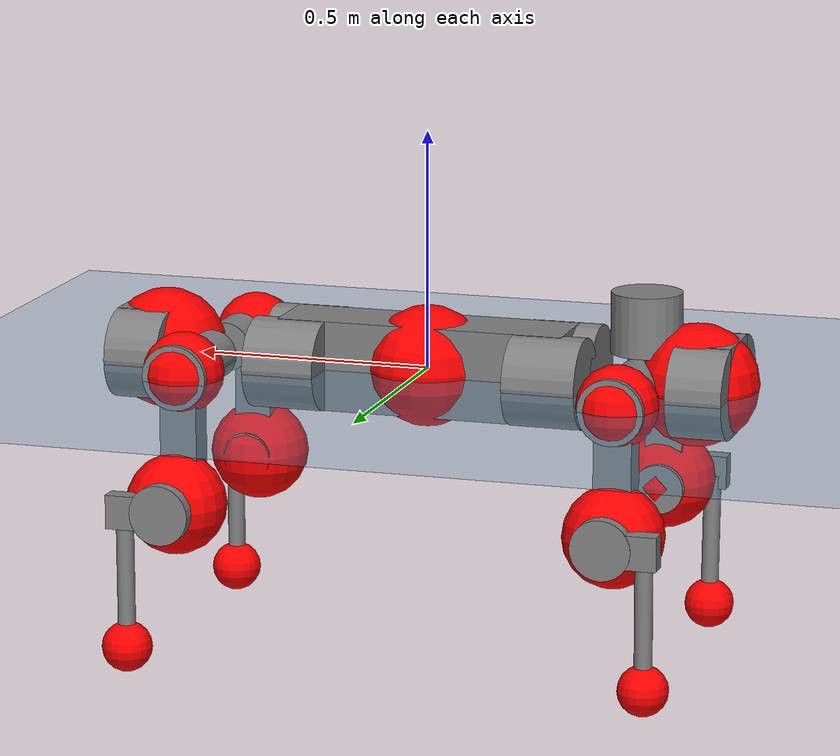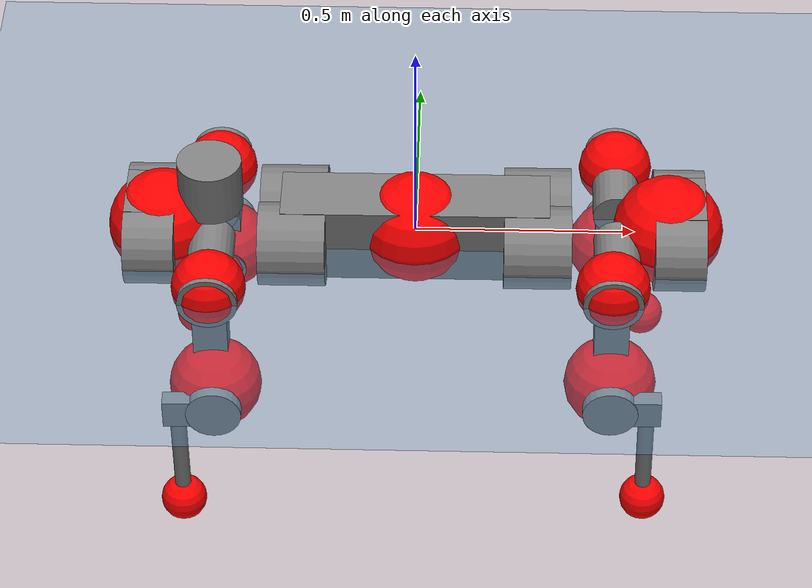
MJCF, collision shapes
<mujoco model="anymal_c">
  <compiler angle="radian" assetdir="assets" balanceinertia="true" inertiafromgeom="false"/>

  <option timestep="0.005" density="1.2" viscosity="2e-05"/>

  <size nkey="1"/>

  <visual>
    <quality shadowsize="8192"/>
    <map shadowclip="0.5"/>
  </visual>

  <default>
    <default class="/">
      <material specular="0" shininess="0.25"/>
      <geom contype="0" conaffinity="0" group="1" solref="-1000 -80"/>
      <site size="0.01 0.005 0.005" group="5"/>
      <general forcelimited="true" forcerange="-80 80" biastype="affine" gainprm="80" biasprm="0 -80 -2"/>
      <default class="anymal_c">
        <joint armature="0.01" damping="0.01" frictionloss="0.1"/>
        <default class="visual">
          <geom type="mesh" group="2"/>
          <default class="visual_zflip"/>
        </default>
        <default class="collision">
          <geom type="cylinder" group="3"/>
          <default class="foot">
            <geom size="0.03 0 0" type="sphere" condim="6" priority="1" friction="0.8 0.02 0.01" solimp="0.015 1 0.03"/>
          </default>
        </default>
      </default>
      <default class="reward_collision_sphere">
        <geom group="5" rgba="1 0 0 1"/>
      </default>
    </default>
  </default>

  <asset>
    <texture type="skybox" colorspace="auto" name="//unnamed_texture_0" builtin="gradient" rgb1="0.95 0.95 0.95" rgb2="0.95 0.95 0.95" width="100" height="600"/>
    <texture type="2d" colorspace="auto" name="texplane" builtin="checker" rgb1="0.345 0.575 0.748" rgb2="0.345 0.575 0.748" markrgb="1 1 1" width="512" height="512"/>
    <texture type="2d" colorspace="linear" name="base" file="base.png"/>
    <texture type="2d" colorspace="linear" name="top_shell" file="top_shell.png"/>
    <texture type="2d" colorspace="linear" name="bottom_shell" file="bottom_shell.png"/>
    <texture type="2d" colorspace="linear" name="remote" file="remote.png"/>
    <texture type="2d" colorspace="linear" name="hatch" file="hatch.png"/>
    <texture type="2d" colorspace="linear" name="handle" file="handle.png"/>
    <texture type="2d" colorspace="linear" name="face" file="face.png"/>
    <texture type="2d" colorspace="linear" name="battery" file="battery.png"/>
    <texture type="2d" colorspace="linear" name="lidar_cage" file="lidar_cage.png"/>
    <texture type="2d" colorspace="linear" name="depth_camera" file="depth_camera.png"/>
    <texture type="2d" colorspace="linear" name="wide_angle_camera" file="wide_angle_camera.png"/>
    <texture type="2d" colorspace="linear" name="lidar" file="lidar.png"/>
    <texture type="2d" colorspace="linear" name="drive" file="drive.png"/>
    <texture type="2d" colorspace="linear" name="hip_l" file="hip_l.png"/>
    <texture type="2d" colorspace="linear" name="shank_l" file="shank_l.png"/>
    <texture type="2d" colorspace="linear" name="foot" file="foot.png"/>
    <texture type="2d" colorspace="linear" name="thigh" file="thigh.png"/>
    <texture type="2d" colorspace="linear" name="shank_r" file="shank_r.png"/>
    <texture type="2d" colorspace="linear" name="hip_r" file="hip_r.png"/>
    <material name="MatPlane" class="/" texture="texplane" texuniform="true" texrepeat="2 2" specular="0.9" shininess="0.5"/>
    <material name="black_plastic" class="/" rgba="0.007 0.007 0.007 1"/>
    <material name="green" class="/" rgba="0.052 0.178 0.033 1"/>
    <material name="red" class="/" rgba="0.178 0.006 0.005 1"/>
    <material name="yellow" class="/" rgba="0.178 0.119 0.006 1"/>
    <material name="lwl" class="/" rgba="0.8 0.8 0.8 1"/>
    <material name="base" class="/" texture="base"/>
    <material name="top_shell" class="/" texture="top_shell"/>
    <material name="bottom_shell" class="/" texture="bottom_shell"/>
    <material name="hip_l" class="/" texture="hip_l"/>
    <material name="thigh" class="/" texture="thigh"/>
    <material name="shank_l" class="/" texture="shank_l"/>
    <material name="foot" class="/" texture="foot"/>
    <material name="hip_r" class="/" texture="hip_r"/>
    <material name="shank" class="/" texture="shank_r"/>
    <material name="hatch" class="/" texture="hatch"/>
    <material name="remote" class="/" texture="remote"/>
    <material name="handle" class="/" texture="handle"/>
    <material name="face" class="/" texture="face"/>
    <material name="depth_camera" class="/" texture="depth_camera"/>
    <material name="wide_angle_camera" class="/" texture="wide_angle_camera"/>
    <material name="battery" class="/" texture="battery"/>
    <material name="lidar_cage" class="/" texture="lidar_cage"/>
    <material name="lidar" class="/" texture="lidar"/>
    <material name="drive" class="/" texture="drive"/>
    <mesh name="base_0" class="/" file="base_0.obj"/>
    <mesh name="base_1" class="/" file="base_1.obj"/>
    <mesh name="base_2" class="/" file="base_2.obj"/>
    <mesh name="base_3" class="/" file="base_3.obj"/>
    <mesh name="base_4" class="/" file="base_4.obj"/>
    <mesh name="base_5" class="/" file="base_5.obj"/>
    <mesh name="top_shell" class="/" file="top_shell.obj"/>
    <mesh name="bottom_shell" class="/" file="bottom_shell.obj"/>
    <mesh name="remote" class="/" file="remote.obj"/>
    <mesh name="handle" class="/" file="handle.obj"/>
    <mesh name="face" class="/" file="face.obj"/>
    <mesh name="wide_angle_camera" class="/" file="wide_angle_camera.obj"/>
    <mesh name="depth_camera" class="/" file="depth_camera.obj"/>
    <mesh name="battery" class="/" file="battery.obj"/>
    <mesh name="lidar_cage" class="/" file="lidar_cage.obj"/>
    <mesh name="lidar" class="/" file="lidar.obj"/>
    <mesh name="drive" class="/" file="drive.obj"/>
    <mesh name="hip_l" class="/" file="hip_l.obj"/>
    <mesh name="thigh" class="/" file="thigh.obj"/>
    <mesh name="shank_l" class="/" file="shank_l.obj"/>
    <mesh name="foot" class="/" file="foot.obj"/>
    <mesh name="hip_r" class="/" file="hip_r.obj"/>
    <mesh name="hatch" class="/" file="hatch.obj"/>
    <mesh name="shank_r" class="/" file="shank_r.obj"/>
  </asset>

  <worldbody>
    <geom name="floor" class="/" size="100 100 0.125" type="plane" group="0" material="MatPlane"/>
    <light name="toplight_shadow" class="/" pos="0 0 5" dir="0.0990148 0.0990148 -0.990148" type="directional" ambient="0.04 0.04 0.04" diffuse="0.55 0.55 0.55" specular="0.12 0.12 0.12"/>
    <light name="toplight_fill" class="/" pos="0 0 5" dir="0.0990148 0.0990148 -0.990148" type="directional" castshadow="false" ambient="0.04 0.04 0.04" diffuse="0.3 0.3 0.3" specular="0.08 0.08 0.08"/>
    <body name="trunk" childclass="anymal_c" pos="-0.000362227 -8.23635e-05 0.00617239" quat="1 0.000479432 -0.000687168 0.000284418">
      <inertial pos="0.00468391 -0.00995128 0.0394553" quat="0.49806 0.50036 0.500925 0.50065" mass="23.5848" diaginertia="2.08377 0.528791 0.153261"/>
      <joint name="//unnamed_joint_0" type="free" armature="0" damping="0" frictionloss="0"/>
      <geom name="//unnamed_geom_1" class="visual" material="green" mesh="base_0"/>
      <geom name="//unnamed_geom_2" class="visual" material="yellow" mesh="base_1"/>
      <geom name="//unnamed_geom_3" class="visual" material="red" mesh="base_2"/>
      <geom name="//unnamed_geom_4" class="visual" material="black_plastic" mesh="base_3"/>
      <geom name="//unnamed_geom_5" class="visual" material="lwl" mesh="base_4"/>
      <geom name="//unnamed_geom_6" class="visual" material="base" mesh="base_5"/>
      <geom name="trunk_1" class="collision" size="0.306379 0.0739535 0.0950831" type="box"/>
      <geom name="trunk_2" class="collision" size="0.0950831 0.0765947" pos="0.279402 0.066913 0" quat="0.707107 0 0.707107 0"/>
      <geom name="trunk_3" class="collision" size="0.0950831 0.0765947" pos="-0.279402 0.066913 0" quat="0.707107 0 0.707107 0"/>
      <geom name="trunk_4" class="collision" size="0.0950831 0.0765947" pos="0.279402 -0.066913 0" quat="0.707107 0 0.707107 0"/>
      <geom name="trunk_5" class="collision" size="0.0950831 0.0765947" pos="-0.279402 -0.066913 0" quat="0.707107 0 0.707107 0"/>
      <geom name="//unnamed_geom_12" class="visual" material="top_shell" mesh="top_shell"/>
      <geom name="//unnamed_geom_13" class="visual" material="bottom_shell" mesh="bottom_shell"/>
      <geom name="//unnamed_geom_14" class="visual" material="remote" mesh="remote"/>
      <geom name="//unnamed_geom_15" class="visual" material="handle" mesh="handle"/>
      <geom name="//unnamed_geom_16" class="visual" pos="0.532469 0 0" quat="1 0 0 0" material="face" mesh="face"/>
      <geom name="trunk_6" class="collision" size="0.0581063 0.0739535 0.0950831" pos="0.603122 0 0" type="box"/>
      <geom name="//unnamed_geom_18" class="collision" size="0.0950831 0.0581063" pos="0.603122 0.066913 0" quat="0.707107 0 0.707107 0"/>
      <geom name="//unnamed_geom_19" class="collision" size="0.0950831 0.0581063" pos="0.603122 -0.066913 0" quat="0.707107 0 0.707107 0"/>
      <geom name="//unnamed_geom_20" class="visual" pos="0.593023 0 -0.0244217" quat="0.965926 0 0.258819 0" material="depth_camera" mesh="depth_camera"/>
      <geom name="//unnamed_geom_21" class="visual" pos="0.659003 0 0.0139061" material="wide_angle_camera" mesh="wide_angle_camera"/>
      <geom name="//unnamed_geom_22" class="visual_zflip" pos="-0.532469 0 0" quat="0 0 0 1" material="face" mesh="face"/>
      <geom name="trunk_7" class="collision" size="0.0581063 0.0739535 0.0950831" pos="-0.603122 0 0" quat="0 0 0 1" type="box"/>
      <geom name="//unnamed_geom_24" class="collision" size="0.0950831 0.0581063" pos="-0.603122 -0.066913 0" quat="0 -0.707107 0 0.707107"/>
      <geom name="//unnamed_geom_25" class="collision" size="0.0950831 0.0581063" pos="-0.603122 0.066913 0" quat="0 -0.707107 0 0.707107"/>
      <geom name="//unnamed_geom_26" class="visual" pos="-0.593023 0 -0.0244217" quat="0 -0.258819 0 0.965926" material="depth_camera" mesh="depth_camera"/>
      <geom name="//unnamed_geom_27" class="visual_zflip" pos="-0.659003 0 0.0139061" quat="0 0 0 1" material="wide_angle_camera" mesh="wide_angle_camera"/>
      <geom name="//unnamed_geom_28" class="visual" material="battery" mesh="battery"/>
      <geom name="//unnamed_geom_29" class="visual" pos="0 0.0687601 0.0296886" quat="0.683013 -0.183013 0.183013 0.683013" material="depth_camera" mesh="depth_camera"/>
      <geom name="//unnamed_geom_30" class="visual" pos="0 -0.0687601 0.0296886" quat="0.683013 0.183013 0.183013 -0.683013" material="depth_camera" mesh="depth_camera"/>
      <geom name="//unnamed_geom_31" class="visual" pos="-0.467596 0 0.0682765" quat="1 0 0 0" material="lidar_cage" mesh="lidar_cage"/>
      <geom name="trunk_8" class="collision" size="0.0739535 0.0633887" pos="-0.467596 0 0.124012"/>
      <geom name="//unnamed_geom_33" class="visual" pos="-0.467596 -0.00012914 0.132094" quat="0.707107 0 0 -0.707107" material="lidar" mesh="lidar"/>
      <geom name="//unnamed_geom_34" class="visual" pos="0.385253 0.099404 4.6521e-10" quat="0.258819 0.965926 0 0" material="drive" mesh="drive"/>
      <geom name="//unnamed_geom_35" class="visual" pos="0.385253 -0.099404 -4.6521e-10" quat="0.258819 -0.965926 0 0" material="drive" mesh="drive"/>
      <geom name="//unnamed_geom_36" class="visual" pos="-0.385253 0.099404 -4.6521e-10" quat="0 0 0.965926 -0.258819" material="drive" mesh="drive"/>
      <geom name="//unnamed_geom_37" class="visual" pos="-0.385253 -0.099404 4.6521e-10" quat="0 0 -0.965926 -0.258819" material="drive" mesh="drive"/>
      <geom name="//unnamed_geom_38" class="visual" pos="0.149014 0 0.067812" quat="1 0 0 0" material="hatch" mesh="hatch"/>
      <geom name="//unnamed_geom_39" class="reward_collision_sphere" size="0.126777"/>
      <geom name="//unnamed_geom_40" class="reward_collision_sphere" size="0.126777" pos="0.578073 0 0"/>
      <geom name="//unnamed_geom_41" class="reward_collision_sphere" size="0.126777" pos="-0.578073 0 0"/>
      <site name="imu" pos="0.31064 0.029001 0.0322798" size="0.0105648"/>
      <camera name="track" pos="0 -1.9118 0" quat="0.707107 0.707107 0 0" mode="trackcom"/>
      <camera name="ego_camera" pos="0.578073 0 -0.0371573" quat="-0.5 -0.5 0.5 0.5"/>
      <body name="LF_HIP" pos="0.384055 0.104485 0.000993753" quat="0.258772 0.965938 -0.000311024 0.000233776">
        <inertial pos="0.0811373 -0.0160535 -0.00378519" quat="-0.128722 0.712348 -0.135144 0.676555" mass="3.35549" diaginertia="0.0206591 0.00417892 0.00217944"/>
        <joint name="LF_HAA" pos="0 0 0" axis="0.999997 -0.00247133 0.000264052" range="-0.662816 0.492641" armature="0.00774836" damping="0" frictionloss="0.147168"/>
        <geom name="//unnamed_geom_42" class="visual" pos="0 2.73662e-05 -4.49487e-06" quat="0.258819 -0.965926 0 0" material="hip_l" mesh="hip_l"/>
        <geom name="//unnamed_geom_43" class="visual" pos="0.0769479 -0.0889012 -0.0511277" quat="0.183013 -0.683013 0.683013 0.183013" material="drive" mesh="drive"/>
        <geom name="//unnamed_geom_44" class="collision" size="0.052824 0.0739535" pos="0.0769479 -0.0114324 -0.00641427" quat="-0.353553 -0.612372 0.612372 -0.353553"/>
        <body name="LF_THIGH" pos="0.0775497 -0.0706005 -0.0417544" quat="0.183014 -0.683113 0.682923 0.182973">
          <inertial pos="0.0381411 -0.0010739 -0.224158" quat="0.99213 -0.00480465 -0.0879575 0.0889803" mass="3.98951" diaginertia="0.103253 0.0241174 0.00363962"/>
          <joint name="LF_HFE" pos="0 0 0" axis="0.999883 0.0138108 0.00659487" stiffness="0.00599056" range="-3.03173 3.0833" armature="0.00990488" damping="0.00816983" frictionloss="0.112694"/>
          <geom name="//unnamed_geom_45" class="visual" pos="0.00653995 1.03054e-05 0" quat="0.707107 0 0 -0.707107" material="thigh" mesh="thigh"/>
          <geom name="//unnamed_geom_46" class="collision" size="0.0686711 0.0422592" pos="0.0513842 0 0" quat="0.5 0.5 -0.5 -0.5"/>
          <geom name="//unnamed_geom_47" class="collision" size="0.039618 0.0316944 0.149295" pos="0.0385382 0 -0.131271" quat="0.707107 0 0 -0.707107" type="box"/>
          <geom name="//unnamed_geom_48" class="visual" pos="0.128846 0 -0.264745" quat="1 0 0 0" material="drive" mesh="drive"/>
          <geom name="//unnamed_geom_49" class="collision" size="0.052824 0.0739535" pos="0.0389235 0 -0.264745" quat="0.707107 0 0.707107 0"/>
          <geom name="//unnamed_geom_50" class="reward_collision_sphere" size="0.0845183" pos="0.0321151 0 0"/>
          <body name="LF_SHANK" pos="0.13169 -0.00600877 -0.27164" quat="0.999989 0.00321054 -0.0018499 -0.00290711">
            <inertial pos="0.00543504 -0.0588118 -0.0755702" quat="0.993071 -0.114965 -0.00196265 -0.0242831" mass="0.770173" diaginertia="0.0351833 0.007657 0.000854995"/>
            <joint name="LF_KFE" pos="0 0 0" axis="0.999996 -0.00282822 -0.000908343" stiffness="0.0044361" range="-3.11953 3.1327" armature="0.012296" damping="0" frictionloss="0.138408"/>
            <geom name="//unnamed_geom_51" class="visual" pos="0.00213253 0.0113708 0" quat="0.707107 0 0 -0.707107" material="shank_l" mesh="shank_l"/>
            <geom name="LF_kfe_act" class="collision" size="0.0633887 0.0211296" pos="0.0256921 0 0" quat="0.5 0.5 -0.5 -0.5"/>
            <geom name="//unnamed_geom_53" class="collision" size="0.0607465 0.0356562 0.0200731" pos="0.0256921 -0.0549633 0" quat="0.5 0.5 -0.5 -0.5" type="box"/>
            <geom name="//unnamed_geom_54" class="visual" pos="0.0167636 -0.0804071 -0.313951" quat="0.382683 0 0 -0.92388" material="foot" mesh="foot"/>
            <geom name="LF_calf" class="collision" size="0.0184884 0.14923" pos="0.0167641 -0.0840714 -0.156975" quat="0.707107 0 0 -0.707107"/>
            <geom name="LF_foot" class="foot" size="0.0228795" pos="0.0167641 -0.0840714 -0.29305" quat="0.707107 0 0 -0.707107"/>
            <geom name="//unnamed_geom_57" class="reward_collision_sphere" size="0.105648" pos="-0.0642303 0 0"/>
            <geom name="//unnamed_geom_58" class="reward_collision_sphere" size="0.052824" pos="0.0167641 -0.0840714 -0.29305"/>
            <site name="LF_foot" class="foot" pos="0.0167641 -0.0840714 -0.29305" quat="0.707107 0 0 -0.707107" size="0.0105648"/>
          </body>
        </body>
      </body>
      <body name="RF_HIP" pos="0.383646 -0.0947255 -0.000993271" quat="0.261826 -0.965113 0.000329994 -0.00216354">
        <inertial pos="0.0718234 0.0155446 -0.00825237" quat="0.139946 0.67747 0.124713 0.711263" mass="3.58593" diaginertia="0.0223207 0.00455859 0.00224415"/>
        <joint name="RF_HAA" pos="0 0 0" axis="0.99998 -0.00546383 -0.00311207" range="-0.631066 0.906468" armature="0.009644" damping="0.00453548" frictionloss="0.133448"/>
        <geom name="//unnamed_geom_59" class="visual" pos="0 -2.7366e-05 -4.49486e-06" quat="0.258819 0.965926 0 0" material="hip_r" mesh="hip_r"/>
        <geom name="//unnamed_geom_60" class="visual" pos="0.0769479 0.0889012 -0.0511277" quat="0.183013 0.683013 0.683013 -0.183013" material="drive" mesh="drive"/>
        <geom name="//unnamed_geom_61" class="collision" size="0.052824 0.0739535" pos="0.0769479 0.0114324 -0.00641427" quat="-0.353553 0.612372 0.612372 0.353553"/>
        <body name="RF_THIGH" pos="0.0662115 0.0649924 -0.0378669" quat="0.18331 0.682955 0.682888 -0.183395">
          <inertial pos="0.0415025 -0.000895055 -0.227944" quat="0.992891 -7.10506e-05 -0.0810241 0.0871944" mass="3.26053" diaginertia="0.101898 0.0212878 0.00249886"/>
          <joint name="RF_HFE" pos="0 0 0" axis="0.998829 -0.00602441 -0.0480033" stiffness="0.00500531" range="-3.36524 3.3273" armature="0.0114699" damping="0.041251" frictionloss="0.107378"/>
          <geom name="//unnamed_geom_62" class="visual" pos="0.00653995 1.03054e-05 0" quat="0.707107 0 0 -0.707107" material="thigh" mesh="thigh"/>
          <geom name="//unnamed_geom_63" class="collision" size="0.0686711 0.0422592" pos="0.0513842 0 0" quat="0.5 0.5 0.5 0.5"/>
          <geom name="//unnamed_geom_64" class="collision" size="0.039618 0.0316944 0.149295" pos="0.0385382 0 -0.131271" quat="0.707107 0 0 0.707107" type="box"/>
          <geom name="//unnamed_geom_65" class="visual" pos="0.128846 0 -0.264745" quat="1 0 0 0" material="drive" mesh="drive"/>
          <geom name="//unnamed_geom_66" class="collision" size="0.052824 0.0739535" pos="0.0389235 0 -0.264745" quat="0.707107 0 0.707107 0"/>
          <geom name="//unnamed_geom_67" class="reward_collision_sphere" size="0.0845183" pos="0.0321151 0 0"/>
          <body name="RF_SHANK" pos="0.11911 7.82788e-05 -0.268602" quat="1 2.60384e-05 -7.48727e-05 -7.42877e-05">
            <inertial pos="0.00933361 0.0588644 -0.0854844" quat="0.993072 0.115405 0.00308887 0.0219141" mass="0.804481" diaginertia="0.0338841 0.00729947 0.000766533"/>
            <joint name="RF_KFE" pos="0 0 0" axis="0.998375 -0.00603125 -0.0566671" stiffness="0.00900809" range="-3.15871 3.29648" armature="0.0109151" damping="0.0118977" frictionloss="0.165248"/>
            <geom name="//unnamed_geom_68" class="visual" pos="0.00213252 -0.0113708 0" quat="0.707107 0 0 0.707107" material="shank" mesh="shank_r"/>
            <geom name="RF_kfe_act" class="collision" size="0.0633887 0.0211296" pos="0.0256921 0 0" quat="0.5 0.5 0.5 0.5"/>
            <geom name="//unnamed_geom_70" class="collision" size="0.0607465 0.0356562 0.0200731" pos="0.0256921 0.0549633 0" quat="0.5 0.5 0.5 0.5" type="box"/>
            <geom name="//unnamed_geom_71" class="visual" pos="0.0167646 0.0804071 -0.313951" quat="0.382683 0 0 0.92388" material="foot" mesh="foot"/>
            <geom name="RF_calf" class="collision" size="0.0184884 0.14923" pos="0.0167641 0.0840714 -0.156975" quat="0.707107 0 0 0.707107"/>
            <geom name="RF_foot" class="foot" size="0.0309834" pos="0.0167641 0.0840714 -0.29305" quat="0.707107 0 0 0.707107"/>
            <geom name="//unnamed_geom_74" class="reward_collision_sphere" size="0.105648" pos="-0.0642303 0 0"/>
            <geom name="//unnamed_geom_75" class="reward_collision_sphere" size="0.052824" pos="0.0167641 0.0840714 -0.29305"/>
            <site name="RF_foot" class="foot" pos="0.0167641 0.0840714 -0.29305" quat="0.707107 0 0 0.707107" size="0.0105648"/>
          </body>
        </body>
      </body>
      <body name="LH_HIP" pos="-0.384932 0.0930377 0.0011862" quat="-0.000305284 -0.000302325 0.965868 -0.259034">
        <inertial pos="0.0765009 0.0226546 -0.00725433" quat="0.0866773 0.680203 0.0956898 0.721564" mass="3.75994" diaginertia="0.0200901 0.00366534 0.0023648"/>
        <joint name="LH_HAA" pos="0 0 0" axis="0.999509 0.0174862 -0.0260149" stiffness="0.0337881" range="-0.496871 0.791076" armature="0.0106783" damping="0.0341323" frictionloss="0.0854883"/>
        <geom name="//unnamed_geom_76" class="visual" pos="0 -2.7366e-05 -4.49486e-06" quat="-0.258819 -0.965926 0 0" material="hip_r" mesh="hip_r"/>
        <geom name="//unnamed_geom_77" class="visual" pos="0.0769479 0.0889012 -0.0511277" quat="0.183013 0.683013 0.683013 -0.183013" material="drive" mesh="drive"/>
        <geom name="//unnamed_geom_78" class="collision" size="0.052824 0.0739535" pos="0.0769479 0.0114324 -0.00641427" quat="-0.353553 0.612372 0.612372 0.353553"/>
        <body name="LH_THIGH" pos="0.0757358 0.0776381 -0.0372211" quat="0.181439 0.683806 0.682881 -0.182108">
          <inertial pos="0.0413224 0.00606281 -0.227628" quat="0.993151 -0.00294577 -0.0702689 0.0933025" mass="3.4881" diaginertia="0.0927795 0.0221349 0.00243715"/>
          <joint name="LH_HFE" pos="0 0 0" axis="0.999994 0.0028989 0.00192761" range="-3.13884 3.16" armature="0.0111205" damping="0.0128923" frictionloss="0.104432"/>
          <geom name="//unnamed_geom_79" class="visual" pos="0.00653995 1.03054e-05 0" quat="0.707107 0 0 -0.707107" material="thigh" mesh="thigh"/>
          <geom name="//unnamed_geom_80" class="collision" size="0.0686711 0.0422592" pos="0.0513842 0 0" quat="0.5 0.5 -0.5 -0.5"/>
          <geom name="//unnamed_geom_81" class="collision" size="0.039618 0.0316944 0.149295" pos="0.0385382 0 -0.131271" quat="0.707107 0 0 -0.707107" type="box"/>
          <geom name="//unnamed_geom_82" class="visual" pos="0.128846 0 -0.264745" quat="1 0 0 0" material="drive" mesh="drive"/>
          <geom name="//unnamed_geom_83" class="collision" size="0.052824 0.0739535" pos="0.0389235 0 -0.264745" quat="0.707107 0 0.707107 0"/>
          <geom name="//unnamed_geom_84" class="reward_collision_sphere" size="0.0845183" pos="0.0321151 0 0"/>
          <body name="LH_SHANK" pos="0.122109 0.00121949 -0.264278" quat="0.999993 0.000316338 0.00314105 -0.00221193">
            <inertial pos="-8.59627e-06 0.0602137 -0.0691604" quat="0.992783 0.117212 -0.00179379 0.0252841" mass="0.654691" diaginertia="0.0307859 0.00555695 0.000561563"/>
            <joint name="LH_KFE" pos="0 0 0" axis="0.999689 0.0101702 -0.0227712" range="-3.14796 3.37866" armature="0.0105652" damping="0" frictionloss="0.0873246"/>
            <geom name="//unnamed_geom_85" class="visual" pos="0.00213252 -0.0113708 0" quat="-0.707107 0 0 -0.707107" material="shank" mesh="shank_r"/>
            <geom name="LH_kfe_act" class="collision" size="0.0633887 0.0211296" pos="0.0256921 0 0" quat="0.5 0.5 -0.5 -0.5"/>
            <geom name="//unnamed_geom_87" class="collision" size="0.0607465 0.0356562 0.0200731" pos="0.0256921 0.0549633 0" quat="0.5 0.5 -0.5 -0.5" type="box"/>
            <geom name="//unnamed_geom_88" class="visual" pos="0.0167646 0.0804071 -0.313951" quat="-0.382683 0 0 -0.92388" material="foot" mesh="foot"/>
            <geom name="LH_calf" class="collision" size="0.0184884 0.14923" pos="0.0167641 0.0840714 -0.156975" quat="0.707107 0 0 -0.707107"/>
            <geom name="LH_foot" class="foot" size="0.0435018" pos="0.0167641 0.0840714 -0.29305" quat="0.707107 0 0 -0.707107"/>
            <geom name="//unnamed_geom_91" class="reward_collision_sphere" size="0.105648" pos="-0.0642303 0 0"/>
            <geom name="//unnamed_geom_92" class="reward_collision_sphere" size="0.052824" pos="0.0167641 0.0840714 -0.29305"/>
            <site name="LH_foot" class="foot" pos="0.0167641 0.0840714 -0.29305" quat="0.707107 0 0 -0.707107" size="0.0105648"/>
          </body>
        </body>
      </body>
      <body name="RH_HIP" pos="-0.386561 -0.106635 0.00412653" quat="-0.00177878 0.0036162 -0.966235 -0.25763">
        <inertial pos="0.0726314 -0.0181767 -0.00473279" quat="-0.134518 0.745514 -0.141848 0.637175" mass="3.53937" diaginertia="0.020502 0.00438066 0.0024365"/>
        <joint name="RH_HAA" pos="0 0 0" axis="0.999963 8.62071e-05 0.00860179" stiffness="0.00485564" range="-0.556766 0.481971" armature="0.0154822" damping="0.0237052" frictionloss="0.0787095"/>
        <geom name="//unnamed_geom_93" class="visual" pos="0 2.73662e-05 -4.49487e-06" quat="-0.258819 0.965926 0 0" material="hip_l" mesh="hip_l"/>
        <geom name="//unnamed_geom_94" class="visual" pos="0.0769479 -0.0889012 -0.0511277" quat="-0.183013 0.683013 -0.683013 -0.183013" material="drive" mesh="drive"/>
        <geom name="//unnamed_geom_95" class="collision" size="0.052824 0.0739535" pos="0.0769479 -0.0114324 -0.00641427" quat="0.353553 0.612372 -0.612372 0.353553"/>
        <body name="RH_THIGH" pos="0.0759874 -0.0671375 -0.0289595" quat="-0.183072 0.682974 -0.682952 -0.183326">
          <inertial pos="0.0395733 -0.0114842 -0.232662" quat="0.991195 -0.0029966 -0.113028 0.0689125" mass="4.10672" diaginertia="0.118456 0.0266878 0.00325284"/>
          <joint name="RH_HFE" pos="0 0 0" axis="0.999649 0.0178319 -0.0195721" range="-3.19348 3.33" armature="0.00404759" damping="0.00570931" frictionloss="0.0984176"/>
          <geom name="//unnamed_geom_96" class="visual" pos="0.00653995 1.03054e-05 0" quat="0.707107 0 0 -0.707107" material="thigh" mesh="thigh"/>
          <geom name="//unnamed_geom_97" class="collision" size="0.0686711 0.0422592" pos="0.0513842 0 0" quat="0.5 0.5 0.5 0.5"/>
          <geom name="//unnamed_geom_98" class="collision" size="0.039618 0.0316944 0.149295" pos="0.0385382 0 -0.131271" quat="0.707107 0 0 0.707107" type="box"/>
          <geom name="//unnamed_geom_99" class="visual" pos="0.128846 0 -0.264745" quat="1 0 0 0" material="drive" mesh="drive"/>
          <geom name="//unnamed_geom_100" class="collision" size="0.052824 0.0739535" pos="0.0389235 0 -0.264745" quat="0.707107 0 0.707107 0"/>
          <geom name="//unnamed_geom_101" class="reward_collision_sphere" size="0.0845183" pos="0.0321151 0 0"/>
          <body name="RH_SHANK" pos="0.130594 0.00714786 -0.263776" quat="0.999995 0.00261044 0.00126301 0.00144571">
            <inertial pos="0.00342235 -0.0598988 -0.0755852" quat="0.990704 -0.115154 0.0307025 -0.0655866" mass="0.808151" diaginertia="0.037291 0.0078352 0.000692933"/>
            <joint name="RH_KFE" pos="0 0 0" axis="0.998962 -0.0255374 -0.0377066" range="-3.28601 2.96452" armature="0.00973075" damping="0.00525132" frictionloss="0.109488"/>
            <geom name="//unnamed_geom_102" class="visual" pos="0.00213253 0.0113708 0" quat="0.707107 0 0 -0.707107" material="shank_l" mesh="shank_l"/>
            <geom name="RH_kfe_act" class="collision" size="0.0633887 0.0211296" pos="0.0256921 0 0" quat="0.5 0.5 0.5 0.5"/>
            <geom name="//unnamed_geom_104" class="collision" size="0.0607465 0.0356562 0.0200731" pos="0.0256921 -0.0549633 0" quat="0.5 0.5 0.5 0.5" type="box"/>
            <geom name="//unnamed_geom_105" class="visual" pos="0.0167636 -0.0804071 -0.313951" quat="0.382683 0 0 -0.92388" material="foot" mesh="foot"/>
            <geom name="RH_calf" class="collision" size="0.0184884 0.14923" pos="0.0167641 -0.0840714 -0.156975" quat="0.707107 0 0 0.707107"/>
            <geom name="RH_foot" class="foot" size="0.0450942" pos="0.0167641 -0.0840714 -0.29305" quat="0.707107 0 0 0.707107"/>
            <geom name="//unnamed_geom_108" class="reward_collision_sphere" size="0.105648" pos="-0.0642303 0 0"/>
            <geom name="//unnamed_geom_109" class="reward_collision_sphere" size="0.052824" pos="0.0167641 -0.0840714 -0.29305"/>
            <site name="RH_foot" class="foot" pos="0.0167641 -0.0840714 -0.29305" quat="0.707107 0 0 0.707107" size="0.0105648"/>
          </body>
        </body>
      </body>
    </body>
  </worldbody>

  <contact>
    <pair class="/" geom1="floor" geom2="LF_foot" name="//unnamed_contact_0"/>
    <pair class="/" geom1="floor" geom2="RF_foot" name="//unnamed_contact_1"/>
    <pair class="/" geom1="floor" geom2="LH_foot" name="//unnamed_contact_2"/>
    <pair class="/" geom1="floor" geom2="RH_foot" name="//unnamed_contact_3"/>
  </contact>

  <actuator>
    <general name="LF_HAA" class="/" joint="LF_HAA" forcerange="-98.2601 98.2601" gainprm="64.1866" biasprm="0 -64.1866 -1.96385"/>
    <general name="LF_HFE" class="/" joint="LF_HFE" forcerange="-119.925 119.925" gainprm="64.1866" biasprm="0 -64.1866 -1.96385"/>
    <general name="LF_KFE" class="/" joint="LF_KFE" forcerange="-82.4208 82.4208" gainprm="64.1866" biasprm="0 -64.1866 -1.96385"/>
    <general name="RF_HAA" class="/" joint="RF_HAA" forcerange="-88.5384 88.5384" gainprm="64.1866" biasprm="0 -64.1866 -1.96385"/>
    <general name="RF_HFE" class="/" joint="RF_HFE" forcerange="-78.7305 78.7305" gainprm="64.1866" biasprm="0 -64.1866 -1.96385"/>
    <general name="RF_KFE" class="/" joint="RF_KFE" forcerange="-94.7064 94.7064" gainprm="64.1866" biasprm="0 -64.1866 -1.96385"/>
    <general name="LH_HAA" class="/" joint="LH_HAA" forcerange="-67.0407 67.0407" gainprm="64.1866" biasprm="0 -64.1866 -1.96385"/>
    <general name="LH_HFE" class="/" joint="LH_HFE" forcerange="-86.1024 86.1024" gainprm="64.1866" biasprm="0 -64.1866 -1.96385"/>
    <general name="LH_KFE" class="/" joint="LH_KFE" forcerange="-96.9909 96.9909" gainprm="64.1866" biasprm="0 -64.1866 -1.96385"/>
    <general name="RH_HAA" class="/" joint="RH_HAA" forcerange="-119.146 119.146" gainprm="64.1866" biasprm="0 -64.1866 -1.96385"/>
    <general name="RH_HFE" class="/" joint="RH_HFE" forcerange="-83.6664 83.6664" gainprm="64.1866" biasprm="0 -64.1866 -1.96385"/>
    <general name="RH_KFE" class="/" joint="RH_KFE" forcerange="-85.0963 85.0963" gainprm="64.1866" biasprm="0 -64.1866 -1.96385"/>
  </actuator>

  <sensor>
    <gyro site="imu" name="imu_angular_velocity"/>
    <velocimeter site="imu" name="imu_linear_velocity"/>
    <framelinvel objtype="site" objname="LF_foot" name="LF_foot_global_linear_velocity"/>
    <framelinvel objtype="site" objname="RF_foot" name="RF_foot_global_linear_velocity"/>
    <framelinvel objtype="site" objname="LH_foot" name="LH_foot_global_linear_velocity"/>
    <framelinvel objtype="site" objname="RH_foot" name="RH_foot_global_linear_velocity"/>
  </sensor>

  <keyframe>
    <key name="home" qpos="0 0 0.55 1 0 0 0 0 0.4 -0.8 0 -0.4 0.8 0 -0.4 0.8 0 0.4 -0.8"/>
  </keyframe>
</mujoco>
